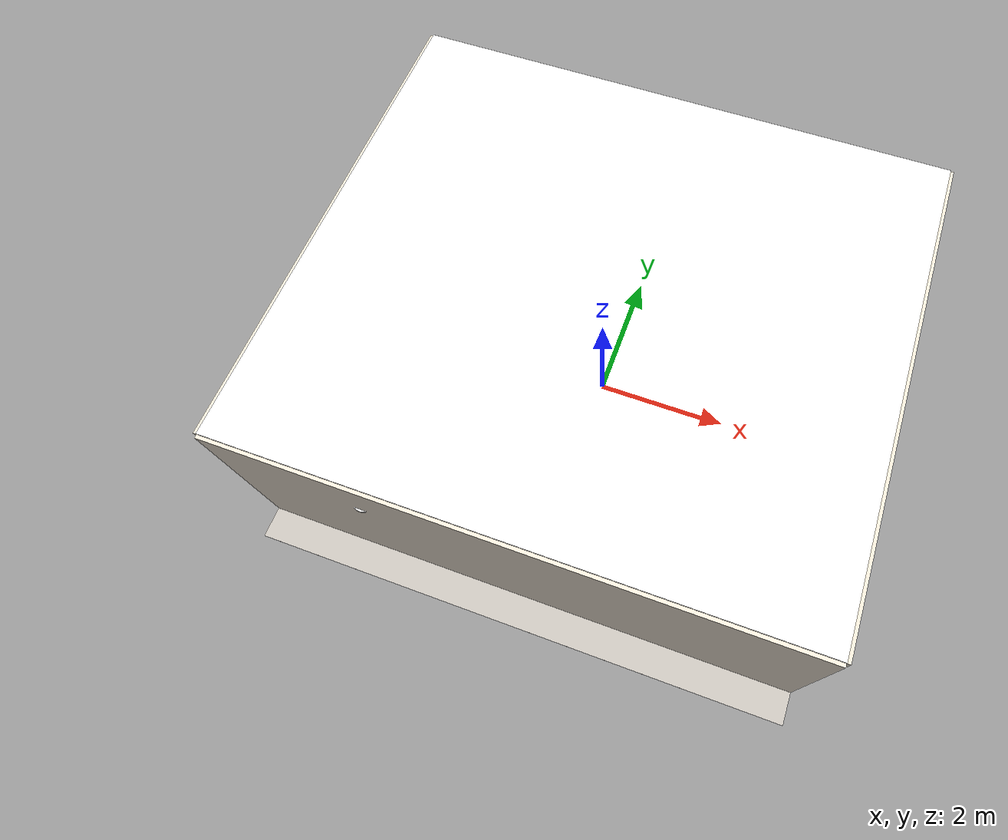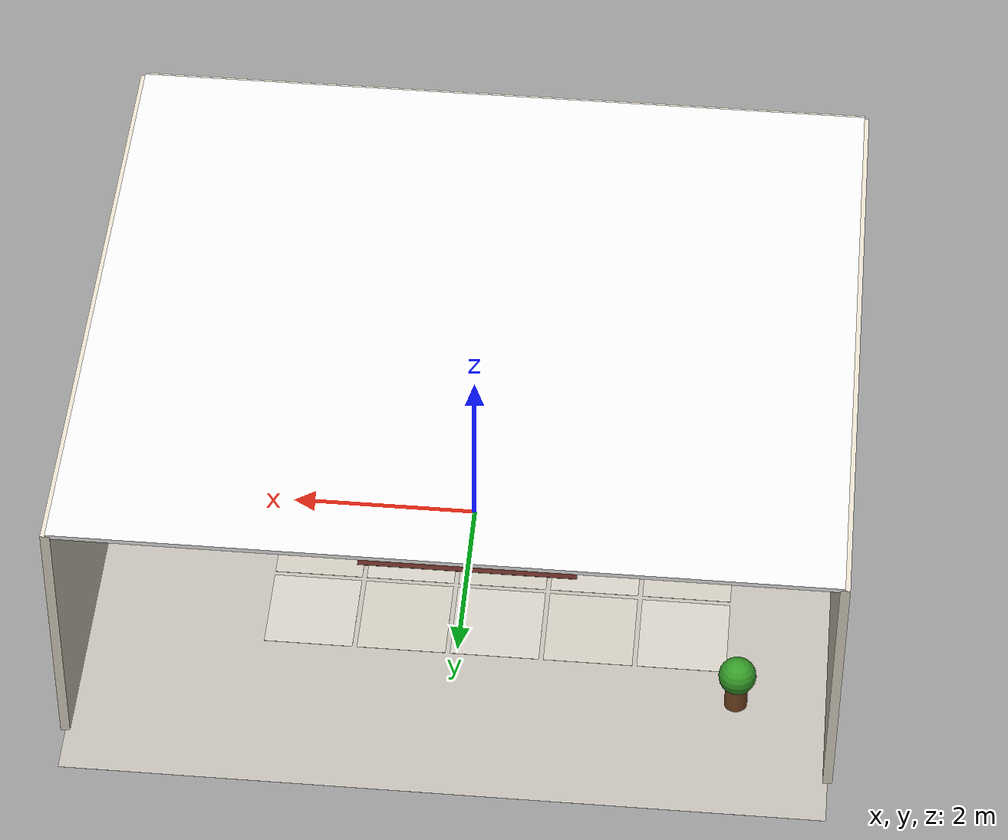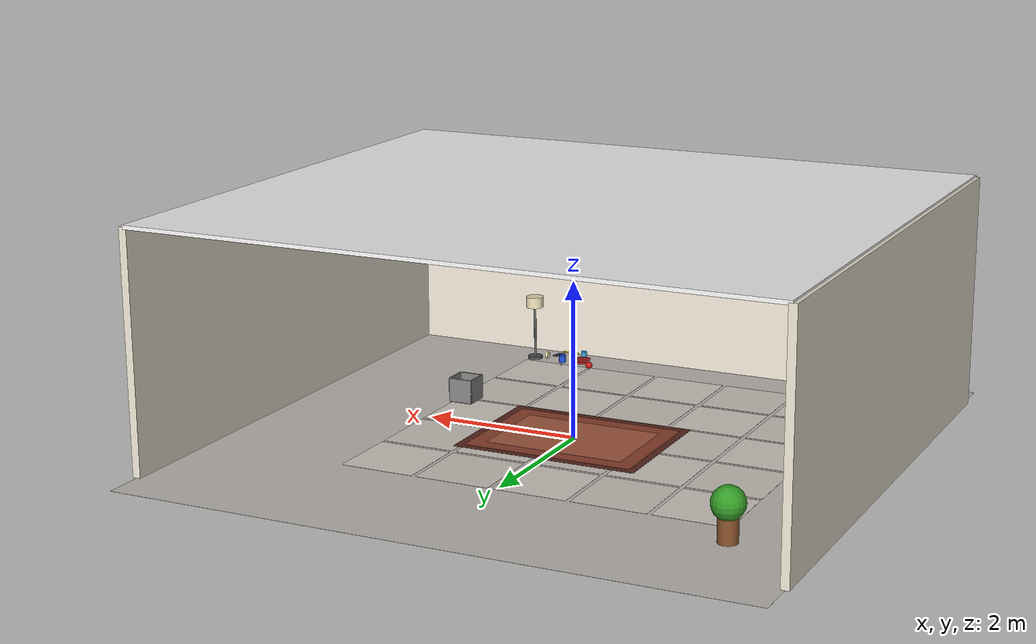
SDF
<sdf version="1.8">
 <world name="home_environment">
  <physics name="1ms" type="ignored">
   <max_step_size>0.001</max_step_size>
   <real_time_factor>1.0</real_time_factor>
   <real_time_update_rate>1000</real_time_update_rate>
  </physics>
  <scene><ambient>0.7 0.7 0.75 1</ambient><background>0.8 0.85 0.9 1</background><shadows>true</shadows></scene>
  <light type="directional" name="sun">
   <pose>0 0 10 0 0 0</pose>
   <diffuse>1.0 1.0 0.95 1</diffuse>
   <specular>0.5 0.5 0.5 1</specular>
   <direction>-0.3 -0.3 -0.9</direction>
  </light>
  <light type="directional" name="fill">
   <cast_shadows>false</cast_shadows>
   <pose>-5 3 5 0 0 0</pose>
   <diffuse>0.4 0.4 0.45 1</diffuse>
   <direction>0.5 -0.3 -0.7</direction>
  </light>
  <light type="point" name="room_light">
   <cast_shadows>false</cast_shadows>
   <pose>0 0 2.8 0 0 0</pose>
   <diffuse>1.0 0.95 0.8 1</diffuse>
   <specular>0.3 0.3 0.3 1</specular>
   <attenuation>
    <range>10</range>
    <constant>0.5</constant>
    <linear>0.05</linear>
    <quadratic>0.01</quadratic>
   </attenuation>
  </light>
  <model name="floor">
   <static>true</static>
   <link name="link">
    <collision name="collision">
     <geometry><plane><normal>0 0 1</normal><size>8 8</size></plane></geometry>
    </collision>
    <visual name="grout_base">
     <pose>0 0 0.0005 0 0 0</pose>
     <geometry><box><size>8 8 0.001</size></box></geometry>
     <material><ambient>0.75 0.73 0.70 1</ambient><diffuse>0.75 0.73 0.70 1</diffuse></material>
    </visual>
    <visual name="t1">
     <pose>-2.4 -2.4 0.002 0 0 0</pose>
     <geometry><box><size>0.95 0.95 0.003</size></box></geometry>
     <material><ambient>0.82 0.80 0.76 1</ambient><diffuse>0.82 0.80 0.76 1</diffuse></material>
    </visual>
    <visual name="t2">
     <pose>-1.4 -2.4 0.002 0 0 0</pose>
     <geometry><box><size>0.95 0.95 0.003</size></box></geometry>
     <material><ambient>0.80 0.78 0.74 1</ambient><diffuse>0.80 0.78 0.74 1</diffuse></material>
    </visual>
    <visual name="t3">
     <pose>-0.4 -2.4 0.002 0 0 0</pose>
     <geometry><box><size>0.95 0.95 0.003</size></box></geometry>
     <material><ambient>0.82 0.80 0.76 1</ambient><diffuse>0.82 0.80 0.76 1</diffuse></material>
    </visual>
    <visual name="t4">
     <pose>0.6 -2.4 0.002 0 0 0</pose>
     <geometry><box><size>0.95 0.95 0.003</size></box></geometry>
     <material><ambient>0.80 0.78 0.74 1</ambient><diffuse>0.80 0.78 0.74 1</diffuse></material>
    </visual>
    <visual name="t5">
     <pose>1.6 -2.4 0.002 0 0 0</pose>
     <geometry><box><size>0.95 0.95 0.003</size></box></geometry>
     <material><ambient>0.82 0.80 0.76 1</ambient><diffuse>0.82 0.80 0.76 1</diffuse></material>
    </visual>
    <visual name="t6">
     <pose>-2.4 -1.4 0.002 0 0 0</pose>
     <geometry><box><size>0.95 0.95 0.003</size></box></geometry>
     <material><ambient>0.80 0.78 0.74 1</ambient><diffuse>0.80 0.78 0.74 1</diffuse></material>
    </visual>
    <visual name="t7">
     <pose>-1.4 -1.4 0.002 0 0 0</pose>
     <geometry><box><size>0.95 0.95 0.003</size></box></geometry>
     <material><ambient>0.82 0.80 0.76 1</ambient><diffuse>0.82 0.80 0.76 1</diffuse></material>
    </visual>
    <visual name="t8">
     <pose>-0.4 -1.4 0.002 0 0 0</pose>
     <geometry><box><size>0.95 0.95 0.003</size></box></geometry>
     <material><ambient>0.80 0.78 0.74 1</ambient><diffuse>0.80 0.78 0.74 1</diffuse></material>
    </visual>
    <visual name="t9">
     <pose>0.6 -1.4 0.002 0 0 0</pose>
     <geometry><box><size>0.95 0.95 0.003</size></box></geometry>
     <material><ambient>0.82 0.80 0.76 1</ambient><diffuse>0.82 0.80 0.76 1</diffuse></material>
    </visual>
    <visual name="t10">
     <pose>1.6 -1.4 0.002 0 0 0</pose>
     <geometry><box><size>0.95 0.95 0.003</size></box></geometry>
     <material><ambient>0.80 0.78 0.74 1</ambient><diffuse>0.80 0.78 0.74 1</diffuse></material>
    </visual>
    <visual name="t11">
     <pose>-2.4 -0.4 0.002 0 0 0</pose>
     <geometry><box><size>0.95 0.95 0.003</size></box></geometry>
     <material><ambient>0.82 0.80 0.76 1</ambient><diffuse>0.82 0.80 0.76 1</diffuse></material>
    </visual>
    <visual name="t12">
     <pose>-1.4 -0.4 0.002 0 0 0</pose>
     <geometry><box><size>0.95 0.95 0.003</size></box></geometry>
     <material><ambient>0.80 0.78 0.74 1</ambient><diffuse>0.80 0.78 0.74 1</diffuse></material>
    </visual>
    <visual name="t13">
     <pose>-0.4 -0.4 0.002 0 0 0</pose>
     <geometry><box><size>0.95 0.95 0.003</size></box></geometry>
     <material><ambient>0.82 0.80 0.76 1</ambient><diffuse>0.82 0.80 0.76 1</diffuse></material>
    </visual>
    <visual name="t14">
     <pose>0.6 -0.4 0.002 0 0 0</pose>
     <geometry><box><size>0.95 0.95 0.003</size></box></geometry>
     <material><ambient>0.80 0.78 0.74 1</ambient><diffuse>0.80 0.78 0.74 1</diffuse></material>
    </visual>
    <visual name="t15">
     <pose>1.6 -0.4 0.002 0 0 0</pose>
     <geometry><box><size>0.95 0.95 0.003</size></box></geometry>
     <material><ambient>0.82 0.80 0.76 1</ambient><diffuse>0.82 0.80 0.76 1</diffuse></material>
    </visual>
    <visual name="t16">
     <pose>-2.4 0.6 0.002 0 0 0</pose>
     <geometry><box><size>0.95 0.95 0.003</size></box></geometry>
     <material><ambient>0.80 0.78 0.74 1</ambient><diffuse>0.80 0.78 0.74 1</diffuse></material>
    </visual>
    <visual name="t17">
     <pose>-1.4 0.6 0.002 0 0 0</pose>
     <geometry><box><size>0.95 0.95 0.003</size></box></geometry>
     <material><ambient>0.82 0.80 0.76 1</ambient><diffuse>0.82 0.80 0.76 1</diffuse></material>
    </visual>
    <visual name="t18">
     <pose>-0.4 0.6 0.002 0 0 0</pose>
     <geometry><box><size>0.95 0.95 0.003</size></box></geometry>
     <material><ambient>0.80 0.78 0.74 1</ambient><diffuse>0.80 0.78 0.74 1</diffuse></material>
    </visual>
    <visual name="t19">
     <pose>0.6 0.6 0.002 0 0 0</pose>
     <geometry><box><size>0.95 0.95 0.003</size></box></geometry>
     <material><ambient>0.82 0.80 0.76 1</ambient><diffuse>0.82 0.80 0.76 1</diffuse></material>
    </visual>
    <visual name="t20">
     <pose>1.6 0.6 0.002 0 0 0</pose>
     <geometry><box><size>0.95 0.95 0.003</size></box></geometry>
     <material><ambient>0.80 0.78 0.74 1</ambient><diffuse>0.80 0.78 0.74 1</diffuse></material>
    </visual>
    <visual name="t21">
     <pose>-2.4 1.6 0.002 0 0 0</pose>
     <geometry><box><size>0.95 0.95 0.003</size></box></geometry>
     <material><ambient>0.82 0.80 0.76 1</ambient><diffuse>0.82 0.80 0.76 1</diffuse></material>
    </visual>
    <visual name="t22">
     <pose>-1.4 1.6 0.002 0 0 0</pose>
     <geometry><box><size>0.95 0.95 0.003</size></box></geometry>
     <material><ambient>0.80 0.78 0.74 1</ambient><diffuse>0.80 0.78 0.74 1</diffuse></material>
    </visual>
    <visual name="t23">
     <pose>-0.4 1.6 0.002 0 0 0</pose>
     <geometry><box><size>0.95 0.95 0.003</size></box></geometry>
     <material><ambient>0.82 0.80 0.76 1</ambient><diffuse>0.82 0.80 0.76 1</diffuse></material>
    </visual>
    <visual name="t24">
     <pose>0.6 1.6 0.002 0 0 0</pose>
     <geometry><box><size>0.95 0.95 0.003</size></box></geometry>
     <material><ambient>0.80 0.78 0.74 1</ambient><diffuse>0.80 0.78 0.74 1</diffuse></material>
    </visual>
    <visual name="t25">
     <pose>1.6 1.6 0.002 0 0 0</pose>
     <geometry><box><size>0.95 0.95 0.003</size></box></geometry>
     <material><ambient>0.82 0.80 0.76 1</ambient><diffuse>0.82 0.80 0.76 1</diffuse></material>
    </visual>
   </link>
  </model>
  <model name="carpet">
   <static>true</static>
   <pose>0 0 0.004 0 0 0</pose>
   <link name="link">
    <visual name="border">
     <geometry><box><size>2.4 1.8 0.006</size></box></geometry>
     <material><ambient>0.35 0.15 0.12 1</ambient><diffuse>0.35 0.15 0.12 1</diffuse></material>
    </visual>
    <visual name="center">
     <pose>0 0 0.001 0 0 0</pose>
     <geometry><box><size>2.2 1.6 0.005</size></box></geometry>
     <material><ambient>0.55 0.25 0.18 1</ambient><diffuse>0.55 0.25 0.18 1</diffuse></material>
    </visual>
    <visual name="inner">
     <pose>0 0 0.002 0 0 0</pose>
     <geometry><box><size>1.8 1.2 0.004</size></box></geometry>
     <material><ambient>0.65 0.35 0.25 1</ambient><diffuse>0.65 0.35 0.25 1</diffuse></material>
    </visual>
   </link>
  </model>
  <model name="wall_back">
   <static>true</static>
   <pose>0 -3.5 1.5 0 0 0</pose>
   <link name="link">
    <visual name="v">
     <geometry><box><size>8 0.1 3</size></box></geometry>
     <material><ambient>0.92 0.88 0.82 1</ambient><diffuse>0.92 0.88 0.82 1</diffuse></material>
    </visual>
    <collision name="c"><geometry><box><size>8 0.1 3</size></box></geometry></collision>
   </link>
  </model>
  <model name="wall_left">
   <static>true</static>
   <pose>-4 0 1.5 0 0 0</pose>
   <link name="link">
    <visual name="v">
     <geometry><box><size>0.1 7 3</size></box></geometry>
     <material><ambient>0.9 0.87 0.8 1</ambient><diffuse>0.9 0.87 0.8 1</diffuse></material>
    </visual>
    <collision name="c"><geometry><box><size>0.1 7 3</size></box></geometry></collision>
   </link>
  </model>
  <model name="wall_right">
   <static>true</static>
   <pose>4 0 1.5 0 0 0</pose>
   <link name="link">
    <visual name="v">
     <geometry><box><size>0.1 7 3</size></box></geometry>
     <material><ambient>0.9 0.87 0.8 1</ambient><diffuse>0.9 0.87 0.8 1</diffuse></material>
    </visual>
    <collision name="c"><geometry><box><size>0.1 7 3</size></box></geometry></collision>
   </link>
  </model>
  <model name="ceiling">
   <static>true</static>
   <pose>0 0 3.0 0 0 0</pose>
   <link name="link">
    <visual name="v">
     <geometry><box><size>8 7 0.05</size></box></geometry>
     <material><ambient>0.95 0.95 0.95 1</ambient><diffuse>0.95 0.95 0.95 1</diffuse></material>
    </visual>
   </link>
  </model>
  <model name="frame_1">
   <static>true</static>
   <pose>-0.5 -3.43 1.8 0 0 0</pose>
   <link name="link">
    <visual name="frame">
     <geometry><box><size>0.5 0.02 0.4</size></box></geometry>
     <material><ambient>0.3 0.2 0.1 1</ambient><diffuse>0.3 0.2 0.1 1</diffuse></material>
    </visual>
    <visual name="picture">
     <pose>0 0.005 0 0 0 0</pose>
     <geometry><box><size>0.42 0.01 0.32</size></box></geometry>
     <material><ambient>0.6 0.7 0.8 1</ambient><diffuse>0.6 0.7 0.8 1</diffuse></material>
    </visual>
   </link>
  </model>
  <model name="frame_2">
   <static>true</static>
   <pose>0.8 -3.43 1.9 0 0 0</pose>
   <link name="link">
    <visual name="frame">
     <geometry><box><size>0.35 0.02 0.25</size></box></geometry>
     <material><ambient>0.25 0.2 0.15 1</ambient><diffuse>0.25 0.2 0.15 1</diffuse></material>
    </visual>
    <visual name="picture">
     <pose>0 0.005 0 0 0 0</pose>
     <geometry><box><size>0.28 0.01 0.18</size></box></geometry>
     <material><ambient>0.8 0.6 0.5 1</ambient><diffuse>0.8 0.6 0.5 1</diffuse></material>
    </visual>
   </link>
  </model>
  <model name="clock">
   <static>true</static>
   <pose>-2.0 -3.43 2.2 0 0 0</pose>
   <link name="link">
    <visual name="v">
     <geometry><cylinder><radius>0.15</radius><length>0.02</length></cylinder></geometry>
     <material><ambient>0.9 0.9 0.9 1</ambient><diffuse>0.9 0.9 0.9 1</diffuse></material>
    </visual>
   </link>
  </model>
  <model name="mug">
   <static>false</static>
   <link name="body">
    <pose>0.1 0.1 1.04 0 0 0</pose>
    <visual name="v">
     <geometry><cylinder><radius>0.04</radius><length>0.09</length></cylinder></geometry>
     <material>
      <ambient>0.1 0.3 0.8 1</ambient>
      <diffuse>0.1 0.3 0.8 1</diffuse>
      <specular>0.4 0.4 0.4 1</specular>
     </material>
    </visual>
    <collision name="c">
     <geometry><cylinder><radius>0.04</radius><length>0.09</length></cylinder></geometry>
    </collision>
    <inertial><mass>0.3</mass><inertia><ixx>0.0003</ixx><iyy>0.0003</iyy><izz>0.0002</izz></inertia></inertial>
   </link>
  </model>
  <model name="book">
   <static>false</static>
   <link name="body">
    <pose>-0.15 0.05 1.03 0 0 0.3</pose>
    <visual name="v">
     <geometry><box><size>0.15 0.22 0.03</size></box></geometry>
     <material><ambient>0.6 0.1 0.1 1</ambient><diffuse>0.6 0.1 0.1 1</diffuse></material>
    </visual>
    <collision name="c"><geometry><box><size>0.15 0.22 0.03</size></box></geometry></collision>
    <inertial><mass>0.5</mass><inertia><ixx>0.0005</ixx><iyy>0.0003</iyy><izz>0.0007</izz></inertia></inertial>
   </link>
  </model>
  <model name="phone">
   <static>false</static>
   <link name="body">
    <pose>0.25 -0.1 1.02 0 0 -0.2</pose>
    <visual name="v">
     <geometry><box><size>0.07 0.15 0.008</size></box></geometry>
     <material>
      <ambient>0.1 0.1 0.12 1</ambient>
      <diffuse>0.1 0.1 0.12 1</diffuse>
      <specular>0.3 0.3 0.3 1</specular>
     </material>
    </visual>
    <collision name="c"><geometry><box><size>0.07 0.15 0.008</size></box></geometry></collision>
    <inertial><mass>0.2</mass><inertia><ixx>0.0001</ixx><iyy>0.00005</iyy><izz>0.0001</izz></inertia></inertial>
   </link>
  </model>
  <model name="pen">
   <static>false</static>
   <link name="body">
    <pose>0.05 0.25 1.02 1.57 0 0.5</pose>
    <visual name="v">
     <geometry><cylinder><radius>0.005</radius><length>0.15</length></cylinder></geometry>
     <material>
      <ambient>0.1 0.1 0.1 1</ambient>
      <diffuse>0.1 0.1 0.1 1</diffuse>
      <specular>0.5 0.5 0.5 1</specular>
     </material>
    </visual>
    <collision name="c">
     <geometry><cylinder><radius>0.005</radius><length>0.15</length></cylinder></geometry>
    </collision>
    <inertial>
     <mass>0.01</mass>
     <inertia><ixx>0.000001</ixx><iyy>0.000001</iyy><izz>0.0000001</izz></inertia>
    </inertial>
   </link>
  </model>
  <model name="apple">
   <static>false</static>
   <link name="body">
    <pose>-0.3 0.2 1.03 0 0 0</pose>
    <visual name="v">
     <geometry><sphere><radius>0.04</radius></sphere></geometry>
     <material>
      <ambient>0.8 0.1 0.1 1</ambient>
      <diffuse>0.8 0.1 0.1 1</diffuse>
      <specular>0.3 0.3 0.3 1</specular>
     </material>
    </visual>
    <collision name="c"><geometry><sphere><radius>0.04</radius></sphere></geometry></collision>
    <inertial><mass>0.18</mass><inertia><ixx>0.0001</ixx><iyy>0.0001</iyy><izz>0.0001</izz></inertia></inertial>
   </link>
  </model>
  <model name="screwdriver">
   <static>false</static>
   <link name="body">
    <pose>0.15 -0.25 1.02 0 1.57 0</pose>
    <visual name="v">
     <geometry><cylinder><radius>0.01</radius><length>0.2</length></cylinder></geometry>
     <material>
      <ambient>0.9 0.7 0.1 1</ambient>
      <diffuse>0.9 0.7 0.1 1</diffuse>
      <specular>0.4 0.4 0.4 1</specular>
     </material>
    </visual>
    <collision name="c">
     <geometry><cylinder><radius>0.01</radius><length>0.2</length></cylinder></geometry>
    </collision>
    <inertial><mass>0.15</mass><inertia><ixx>0.0001</ixx><iyy>0.0001</iyy><izz>0.00001</izz></inertia></inertial>
   </link>
  </model>
  <model name="cup">
   <static>false</static>
   <link name="body">
    <pose>-0.05 -0.2 1.03 0 0 0</pose>
    <visual name="v">
     <geometry><cylinder><radius>0.035</radius><length>0.08</length></cylinder></geometry>
     <material>
      <ambient>0.2 0.6 0.8 1</ambient>
      <diffuse>0.2 0.6 0.8 1</diffuse>
      <specular>0.3 0.3 0.3 1</specular>
     </material>
    </visual>
    <collision name="c">
     <geometry><cylinder><radius>0.035</radius><length>0.08</length></cylinder></geometry>
    </collision>
    <inertial><mass>0.2</mass><inertia><ixx>0.0002</ixx><iyy>0.0002</iyy><izz>0.0001</izz></inertia></inertial>
   </link>
  </model>
  <model name="tape">
   <static>false</static>
   <link name="body">
    <pose>0.35 0.0 1.03 0 1.57 0</pose>
    <visual name="v">
     <geometry><cylinder><radius>0.04</radius><length>0.025</length></cylinder></geometry>
     <material><ambient>0.95 0.95 0.7 1</ambient><diffuse>0.95 0.95 0.7 1</diffuse></material>
    </visual>
    <collision name="c">
     <geometry><cylinder><radius>0.04</radius><length>0.025</length></cylinder></geometry>
    </collision>
    <inertial><mass>0.1</mass><inertia><ixx>0.00005</ixx><iyy>0.00005</iyy><izz>0.00005</izz></inertia></inertial>
   </link>
  </model>
  <model name="bin">
   <static>true</static>
   <pose>1.5 0 0.3 0 0 0</pose>
   <link name="body">
    <visual name="bottom">
     <pose>0 0 0.01 0 0 0</pose>
     <geometry><box><size>0.3 0.3 0.02</size></box></geometry>
     <material><ambient>0.4 0.4 0.4 1</ambient><diffuse>0.4 0.4 0.4 1</diffuse></material>
    </visual>
    <visual name="front">
     <pose>0 -0.15 0.16 0 0 0</pose>
     <geometry><box><size>0.3 0.02 0.3</size></box></geometry>
     <material><ambient>0.5 0.5 0.5 1</ambient><diffuse>0.5 0.5 0.5 1</diffuse></material>
    </visual>
    <visual name="back">
     <pose>0 0.15 0.16 0 0 0</pose>
     <geometry><box><size>0.3 0.02 0.3</size></box></geometry>
     <material><ambient>0.5 0.5 0.5 1</ambient><diffuse>0.5 0.5 0.5 1</diffuse></material>
    </visual>
    <visual name="left">
     <pose>-0.15 0 0.16 0 0 0</pose>
     <geometry><box><size>0.02 0.3 0.3</size></box></geometry>
     <material><ambient>0.5 0.5 0.5 1</ambient><diffuse>0.5 0.5 0.5 1</diffuse></material>
    </visual>
    <visual name="right">
     <pose>0.15 0 0.16 0 0 0</pose>
     <geometry><box><size>0.02 0.3 0.3</size></box></geometry>
     <material><ambient>0.5 0.5 0.5 1</ambient><diffuse>0.5 0.5 0.5 1</diffuse></material>
    </visual>
    <collision name="bc">
     <pose>0 0 0.01 0 0 0</pose>
     <geometry><box><size>0.3 0.3 0.02</size></box></geometry>
    </collision>
   </link>
  </model>
  <model name="plant">
   <static>true</static>
   <pose>-3.0 2.5 0 0 0 0</pose>
   <link name="link">
    <visual name="pot">
     <pose>0 0 0.15 0 0 0</pose>
     <geometry><cylinder><radius>0.12</radius><length>0.3</length></cylinder></geometry>
     <material><ambient>0.5 0.3 0.15 1</ambient><diffuse>0.5 0.3 0.15 1</diffuse></material>
    </visual>
    <visual name="leaves">
     <pose>0 0 0.45 0 0 0</pose>
     <geometry><sphere><radius>0.2</radius></sphere></geometry>
     <material><ambient>0.2 0.6 0.15 1</ambient><diffuse>0.2 0.6 0.15 1</diffuse></material>
    </visual>
   </link>
  </model>
  <model name="lamp">
   <static>true</static>
   <pose>2.0 -3.0 0 0 0 0</pose>
   <link name="link">
    <visual name="base">
     <pose>0 0 0.02 0 0 0</pose>
     <geometry><cylinder><radius>0.1</radius><length>0.04</length></cylinder></geometry>
     <material><ambient>0.3 0.3 0.3 1</ambient><diffuse>0.3 0.3 0.3 1</diffuse></material>
    </visual>
    <visual name="pole">
     <pose>0 0 0.4 0 0 0</pose>
     <geometry><cylinder><radius>0.015</radius><length>0.76</length></cylinder></geometry>
     <material><ambient>0.4 0.4 0.4 1</ambient><diffuse>0.4 0.4 0.4 1</diffuse></material>
    </visual>
    <visual name="shade">
     <pose>0 0 0.82 0 0 0</pose>
     <geometry><cylinder><radius>0.12</radius><length>0.15</length></cylinder></geometry>
     <material><ambient>0.9 0.85 0.7 1</ambient><diffuse>0.9 0.85 0.7 1</diffuse></material>
    </visual>
   </link>
  </model>
  <model name="rug">
   <static>true</static>
   <pose>0 0 0.002 0 0 0</pose>
   <link name="link">
    <visual name="v">
     <geometry><box><size>2.0 1.5 0.004</size></box></geometry>
     <material><ambient>0.6 0.2 0.15 1</ambient><diffuse>0.6 0.2 0.15 1</diffuse></material>
    </visual>
   </link>
  </model>
 </world>
</sdf>
